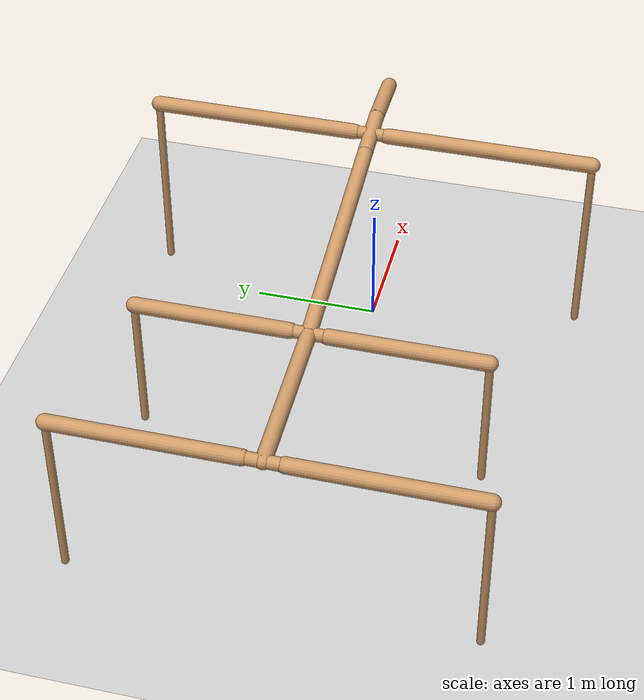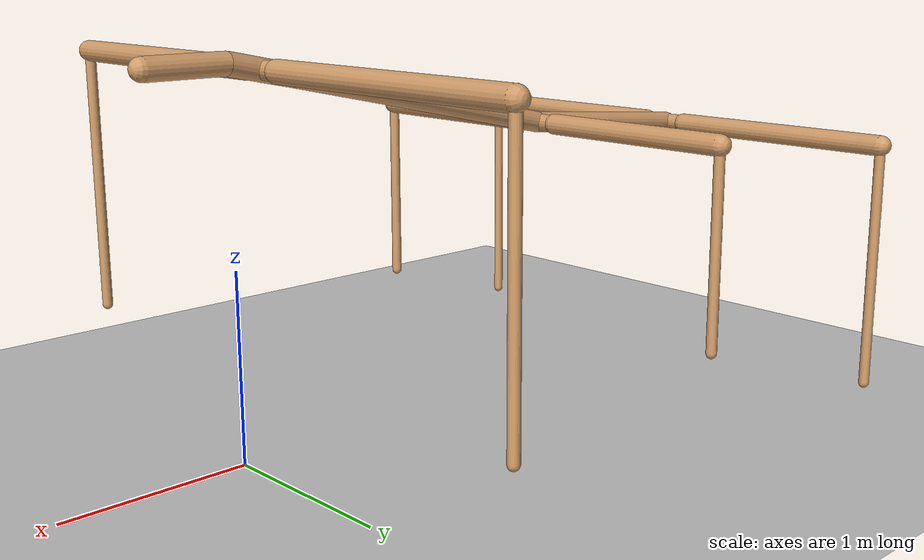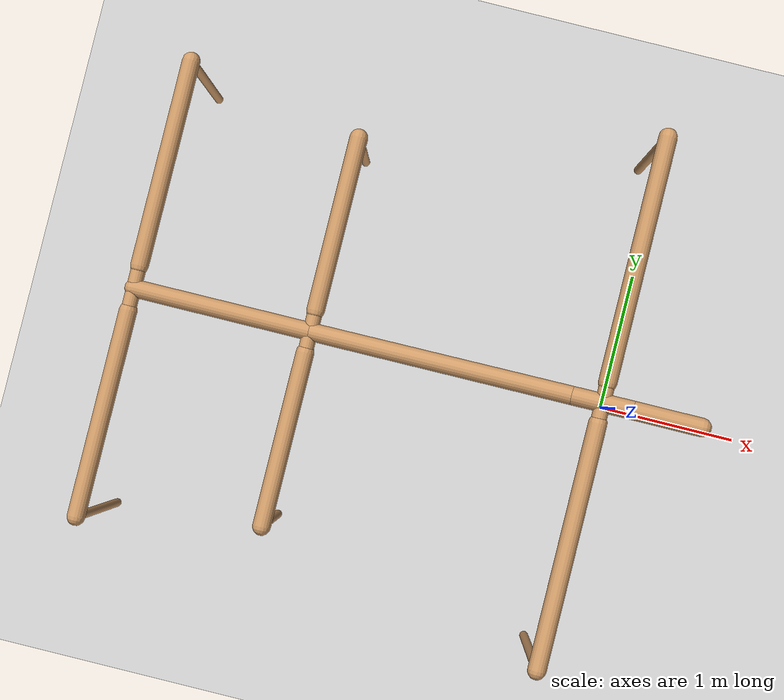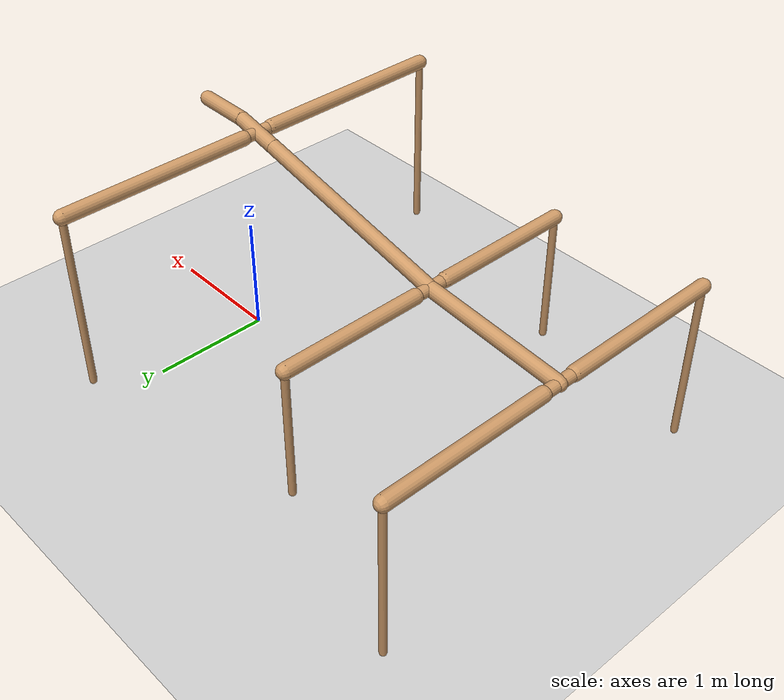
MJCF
<mujoco model="stickinsect">
  <compiler angle="degree" coordinate="local" inertiafromgeom="true"/>
  <option integrator="RK4" timestep="0.005"/> <!-- frequency [200,50] -->

  <custom>
    <numeric data="0.10681971 -0.20482576 0.76341401 0.92561184 0.18595086 0.18452993
0.78049568 0.01004119 0.00413513 -0.03130112 -0.18171205 0.21024531
-0.19540428 0.15524787 -0.6086322 0.4715757 -0.23915008 0.06885989
-1.01172582 0.99137151 0.1567984 0.60833356 -0.45790772 -0.41003116 " name="init_qpos"/>
  </custom>

  <default>
    <joint armature="1" damping="1" limited="true"/>
    <geom conaffinity="0" condim="3" density="5.0" friction="1 0.5 0.5" margin="0.01" rgba="0.8 0.6 0.4 1"/>
  </default>

  <asset>
    <texture builtin="gradient" height="100" rgb1="1 1 1" rgb2="0 0 0" type="skybox" width="100"/>
    <texture builtin="flat" height="1278" mark="cross" markrgb="1 1 1" name="texgeom" random="0.01" rgb1="0.8 0.6 0.4" rgb2="0.8 0.6 0.4" type="cube" width="127"/>
    <texture builtin="checker" height="100" name="texplane" rgb1=".25 .25 .25" rgb2=".3 .3 .3" type="2d" width="100" mark="cross" markrgb=".8 .8 .8"/>
    <material name="MatPlane" reflectance="0.5" shininess="1" specular="1" texrepeat="60 60" texture="texplane"/>
    <material name="geom" texture="texgeom" texuniform="true"/>
  </asset>

  <worldbody>
    <light cutoff="100" diffuse="1 1 1" dir="-0 0 -1.3" directional="true" exponent="1" pos="0 0 1.3" specular=".1 .1 .1"/>
    <geom conaffinity="1" condim="3" material="MatPlane" name="floor" pos="0 0 0" rgba="0.8 0.8 0.8 1" size="40 40 40" type="plane"/>
    <camera name="side" mode="fixed" pos="7 -17 2" xyaxes="1 0 0 0 0 1"/>
    <camera name="top" mode="fixed" pos="5 0 20" xyaxes="1 0 0 0 1 0"/>
    <camera name="fixed float" mode="fixed" pos="-2 -10 6" xyaxes="1 0 0 0 0 1"/>

    <body name="torso" pos="0 0 2">
      <geom name="head_geom" pos="0 0 0" fromto="0.0 0.0 0.0 0.44 0.0 0.0" size="0.06" type="capsule"/>
      <geom name="T1_geom" pos="0 0 0" fromto="0.0 0.0 0.0 -0.38 0.0 -0.08" size="0.06" type="capsule"/>
      <geom name="T2_geom" pos="0 0 0" fromto="-0.38 0.0 -0.08 -2.1 0.0 -0.46" size="0.06" type="capsule"/>
      <geom name="T3_geom" pos="0 0 0" fromto="-2.1 0.0 -0.46 -3.3 0.0 -0.56" size="0.06" type="capsule"/>
      <joint armature="0" damping="0" limited="false" margin="0.01" name="root" pos="0 0 0" type="free"/>

      <body name="LF_leg" pos="-0.19 0 -0.04">
        <geom fromto="0.0 0.0 0.0 0.0 0.13 0.0" name="LF_cox_geom" size="0.05" type="capsule"/>
        <joint axis="0 -1 0" name="LF_Sup" pos="0.0 0.0 0.0" range="-7 24" type="hinge" />
        <body name="LF_femur" pos="0.0 0.13 0">
          <joint axis="1 0 0" name="LF_CTr" pos="0.0 0.0 0.0" range="-25 32" type="hinge"/>
          <joint axis="0 0 -1" name="LF_ThC" pos="0.0 0.0 0.0" range="-5 71" type="hinge"/>
          <geom fromto="0.0 0.0 0.0 0.0 1.58 0.0" name="LF_femur_geom" size="0.06" type="capsule"/>
          <body pos="0.0 1.58 0.0">
            <joint axis="1 0 0" name="LF_FTi" pos="0.0 0.0 0.0" range="-43 56" type="hinge"/>
            <geom fromto="0.0 0.0 0.0 0.0 0.0 -1.50" name="LF_tibia_geom" size="0.03" type="capsule"/>
          </body>
        </body>
      </body>

      <body name="RF_leg" pos="-0.19 0 -0.04">
        <geom fromto="0.0 0.0 0.0 0.0 -0.13 0.0" name="RF_cox_geom" size="0.05" type="capsule"/>
        <joint axis="0 -1 0" name="RF_Sup" pos="0.0 0.0 0.0" range="-7 24" type="hinge" />
        <body name="RF_femur" pos="0.0 -0.13 0">
          <joint axis="-1 0 0" name="RF_CTr" pos="0.0 0.0 0.0" range="-25 32" type="hinge"/>
          <joint axis="0 0 1" name="RF_ThC" pos="0.0 0.0 0.0" range="-5 71" type="hinge"/>
          <geom fromto="0.0 0.0 0.0 0.0 -1.58 0.0" name="RF_femur_geom" size="0.06" type="capsule"/>
          <body pos="0.0 -1.58 0.0">
            <joint axis="-1 0 0" name="RF_FTi" pos="0.0 0.0 0.0" range="-43 56" type="hinge"/>
            <geom fromto="0.0 0.0 0.0 0.0 0.0 -1.50" name="RF_tibia_geom" size="0.03" type="capsule"/>
          </body>
        </body>
      </body>

      <body name="LM_leg" pos="-2.1 0.0 -0.46">
        <geom fromto="0.0 0.0 0.0 0.0 0.14 0.0" name="LM_cox_geom" size="0.05" type="capsule" />
        <joint axis="0 -1 0" name="LM_Sup" pos="0.0 0.0 0.0" range="-26 37" type="hinge" />
        <body name="LM_femur" pos="0.0 0.14 0">
          <joint axis="1 0 0" name="LM_CTr" pos="0.0 0.0 0.0" range="-24 34" type="hinge"/>
          <joint axis="0 0 -1" name="LM_ThC" pos="0.0 0.0 0.0" range="-48 30" type="hinge"/>
          <geom fromto="0.0 0.0 0.0 0.0 1.16 0.0" name="LM_femur_geom" size="0.06" type="capsule"/>
          <body pos="0.0 1.16 0.0">
            <joint axis="1 0 0" name="LM_FTi" pos="0.0 0.0 0.0" range="-50 79" type="hinge"/>
            <geom fromto="0.0 0.0 0.0 0.0 0.0 -1.12" name="LM_tibia_geom" size="0.03" type="capsule"/>
          </body>
        </body>
      </body>

      <body name="RM_leg" pos="-2.1 0.0 -0.46">
        <geom fromto="0.0 0.0 0.0 0.0 -0.14 0.0" name="RM_cox_geom" size="0.05" type="capsule" />
        <joint axis="0 -1 0" name="RM_Sup" pos="0.0 0.0 0.0" range="-26 37" type="hinge" />
        <body name="RM_femur" pos="0.0 -0.14 0">
          <joint axis="-1 0 0" name="RM_CTr" pos="0.0 0.0 0.0" range="-24 34" type="hinge"/>
          <joint axis="0 0 1" name="RM_ThC" pos="0.0 0.0 0.0" range="-48 30" type="hinge"/>
          <geom fromto="0.0 0.0 0.0 0.0 -1.16 0.0" name="RM_femur_geom" size="0.06" type="capsule"/>
          <body pos="0.0 -1.16 0.0">
            <joint axis="-1 0 0" name="RM_FTi" pos="0.0 0.0 0.0" range="-50 79" type="hinge"/>
            <geom fromto="0.0 0.0 0.0 0.0 0.0 -1.12" name="RM_tibia_geom" size="0.03" type="capsule"/>
          </body>
        </body>
      </body>

      <body name="LH_leg" pos="-3.3 0.0 -0.56">
        <geom fromto="0.0 0.0 0.0 0.0 0.15 0.0" name="LH_cox_geom" size="0.05" type="capsule"/>
        <joint axis="0 -1 0" name="LH_Sup" pos="0.0 0.0 0.0" range="-18 20" type="hinge" />
        <body name="LH_femur" pos="0.0 0.15 0">
          <joint axis="1 0 0" name="LH_CTr" pos="0.0 0.0 0.0" range="-10 50" type="hinge"/>
          <joint axis="0 0 -1" name="LH_ThC" pos="0.0 0.0 0.0" range="-65 -10" type="hinge"/>
          <geom fromto="0.0 0.0 0.0 0.0 1.39 0.0" name="LH_femur_geom" size="0.06" type="capsule"/>
          <body pos="0.0 1.39 0.0">
            <joint axis="1 0 0" name="LH_FTi" pos="0.0 0.0 0.0" range="-51 78" type="hinge"/>
            <geom fromto="0.0 0.0 0.0 0.0 0.0 -1.41" name="LH_tibia_geom" size="0.03" type="capsule"/>
          </body>
        </body>
      </body>

      <body name="RH_leg" pos="-3.3 0.0 -0.56">
        <geom fromto="0.0 0.0 0.0 0.0 -0.15 0.0" name="RH_cox_geom" size="0.05" type="capsule"/>
        <joint axis="0 -1 0" name="RH_Sup" pos="0.0 0.0 0.0" range="-18 20" type="hinge" />
        <body name="RH_femur" pos="0.0 -0.15 0">
          <joint axis="-1 0 0" name="RH_CTr" pos="0.0 0.0 0.0" range="-10 50" type="hinge"/>
          <joint axis="0 0 1" name="RH_ThC" pos="0.0 0.0 0.0" range="-65 -10" type="hinge"/>
          <geom fromto="0.0 0.0 0.0 0.0 -1.39 0.0" name="RH_femur_geom" size="0.06" type="capsule"/>
          <body pos="0.0 -1.39 0.0">
            <joint axis="-1 0 0" name="RH_FTi" pos="0.0 0.0 0.0" range="-51 78" type="hinge"/>
            <geom fromto="0.0 0.0 0.0 0.0 0.0 -1.41" name="RH_tibia_geom" size="0.03" type="capsule"/>
          </body>
        </body>
      </body>

    </body>
  </worldbody>

  <actuator>
    <position ctrllimited="true" ctrlrange="-3.141592654 3.141592654" joint="LF_Sup" gear="1" kp="300" kv="400"/>
    <position ctrllimited="true" ctrlrange="-3.141592654 3.141592654" joint="LM_Sup" gear="1" kp="300" kv="400"/>
    <position ctrllimited="true" ctrlrange="-3.141592654 3.141592654" joint="LH_Sup" gear="1" kp="300" kv="400"/>
    <position ctrllimited="true" ctrlrange="-3.141592654 3.141592654" joint="RF_Sup" gear="1" kp="300" kv="400"/>
    <position ctrllimited="true" ctrlrange="-3.141592654 3.141592654" joint="RM_Sup" gear="1" kp="300" kv="400"/>
    <position ctrllimited="true" ctrlrange="-3.141592654 3.141592654" joint="RH_Sup" gear="1" kp="300" kv="400"/>

    <position ctrllimited="true" ctrlrange="-3.141592654 3.141592654" joint="LF_CTr" gear="1" kp="300" kv="400"/>
    <position ctrllimited="true" ctrlrange="-3.141592654 3.141592654" joint="LM_CTr" gear="1" kp="300" kv="400"/>
    <position ctrllimited="true" ctrlrange="-3.141592654 3.141592654" joint="LH_CTr" gear="1" kp="300" kv="400"/>
    <position ctrllimited="true" ctrlrange="-3.141592654 3.141592654" joint="RF_CTr" gear="1" kp="300" kv="400"/>
    <position ctrllimited="true" ctrlrange="-3.141592654 3.141592654" joint="RM_CTr" gear="1" kp="300" kv="400"/>
    <position ctrllimited="true" ctrlrange="-3.141592654 3.141592654" joint="RH_CTr" gear="1" kp="300" kv="400"/>

    <position ctrllimited="true" ctrlrange="-3.141592654 3.141592654" joint="LF_ThC" gear="1" kp="300" kv="400"/>
    <position ctrllimited="true" ctrlrange="-3.141592654 3.141592654" joint="LM_ThC" gear="1" kp="300" kv="400"/>
    <position ctrllimited="true" ctrlrange="-3.141592654 3.141592654" joint="LH_ThC" gear="1" kp="300" kv="400"/>
    <position ctrllimited="true" ctrlrange="-3.141592654 3.141592654" joint="RF_ThC" gear="1" kp="300" kv="400"/>
    <position ctrllimited="true" ctrlrange="-3.141592654 3.141592654" joint="RM_ThC" gear="1" kp="300" kv="400"/>
    <position ctrllimited="true" ctrlrange="-3.141592654 3.141592654" joint="RH_ThC" gear="1" kp="300" kv="400"/>

    <position ctrllimited="true" ctrlrange="-3.141592654 3.141592654" joint="LF_FTi" gear="1" kp="300" kv="400"/>
    <position ctrllimited="true" ctrlrange="-3.141592654 3.141592654" joint="LM_FTi" gear="1" kp="300" kv="400"/>
    <position ctrllimited="true" ctrlrange="-3.141592654 3.141592654" joint="LH_FTi" gear="1" kp="300" kv="400"/>
    <position ctrllimited="true" ctrlrange="-3.141592654 3.141592654" joint="RF_FTi" gear="1" kp="300" kv="400"/>
    <position ctrllimited="true" ctrlrange="-3.141592654 3.141592654" joint="RM_FTi" gear="1" kp="300" kv="400"/>
    <position ctrllimited="true" ctrlrange="-3.141592654 3.141592654" joint="RH_FTi" gear="1" kp="300" kv="400"/>

    <velocity joint="LF_Sup" gear="1" ctrllimited="true" ctrlrange="-600 600"/>
    <velocity joint="LM_Sup" gear="1" ctrllimited="true" ctrlrange="-600 600"/>
    <velocity joint="LH_Sup" gear="1" ctrllimited="true" ctrlrange="-600 600"/>
    <velocity joint="RF_Sup" gear="1" ctrllimited="true" ctrlrange="-600 600"/>
    <velocity joint="RM_Sup" gear="1" ctrllimited="true" ctrlrange="-600 600"/>
    <velocity joint="RH_Sup" gear="1" ctrllimited="true" ctrlrange="-600 600"/>

    <velocity joint="LF_CTr" gear="1" ctrllimited="true" ctrlrange="-600 600"/>
    <velocity joint="LM_CTr" gear="1" ctrllimited="true" ctrlrange="-600 600"/>
    <velocity joint="LH_CTr" gear="1" ctrllimited="true" ctrlrange="-600 600"/>
    <velocity joint="RF_CTr" gear="1" ctrllimited="true" ctrlrange="-600 600"/>
    <velocity joint="RM_CTr" gear="1" ctrllimited="true" ctrlrange="-600 600"/>
    <velocity joint="RH_CTr" gear="1" ctrllimited="true" ctrlrange="-600 600"/>

    <velocity joint="LF_ThC" gear="1" ctrllimited="true" ctrlrange="-600 600"/>
    <velocity joint="LM_ThC" gear="1" ctrllimited="true" ctrlrange="-600 600"/>
    <velocity joint="LH_ThC" gear="1" ctrllimited="true" ctrlrange="-600 600"/>
    <velocity joint="RF_ThC" gear="1" ctrllimited="true" ctrlrange="-600 600"/>
    <velocity joint="RM_ThC" gear="1" ctrllimited="true" ctrlrange="-600 600"/>
    <velocity joint="RH_ThC" gear="1" ctrllimited="true" ctrlrange="-600 600"/>

    <velocity joint="LF_FTi" gear="1" ctrllimited="true" ctrlrange="-600 600"/>
    <velocity joint="LM_FTi" gear="1" ctrllimited="true" ctrlrange="-600 600"/>
    <velocity joint="LH_FTi" gear="1" ctrllimited="true" ctrlrange="-600 600"/>
    <velocity joint="RF_FTi" gear="1" ctrllimited="true" ctrlrange="-600 600"/>
    <velocity joint="RM_FTi" gear="1" ctrllimited="true" ctrlrange="-600 600"/>
    <velocity joint="RH_FTi" gear="1" ctrllimited="true" ctrlrange="-600 600"/>

  </actuator>

</mujoco>
